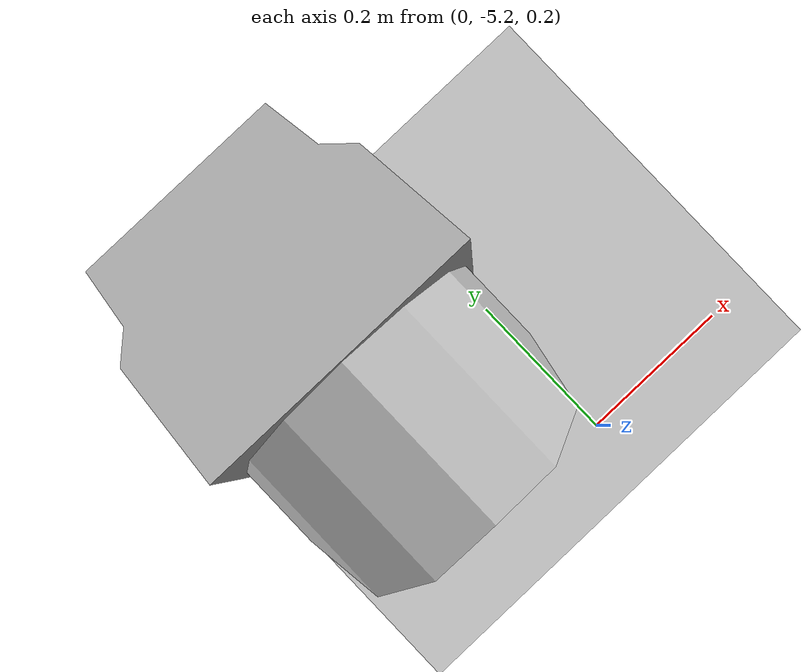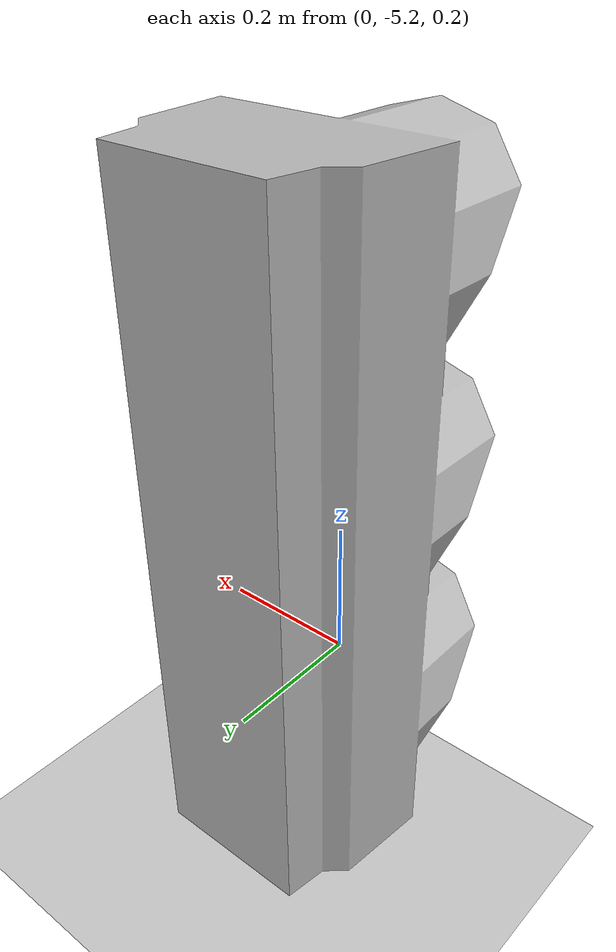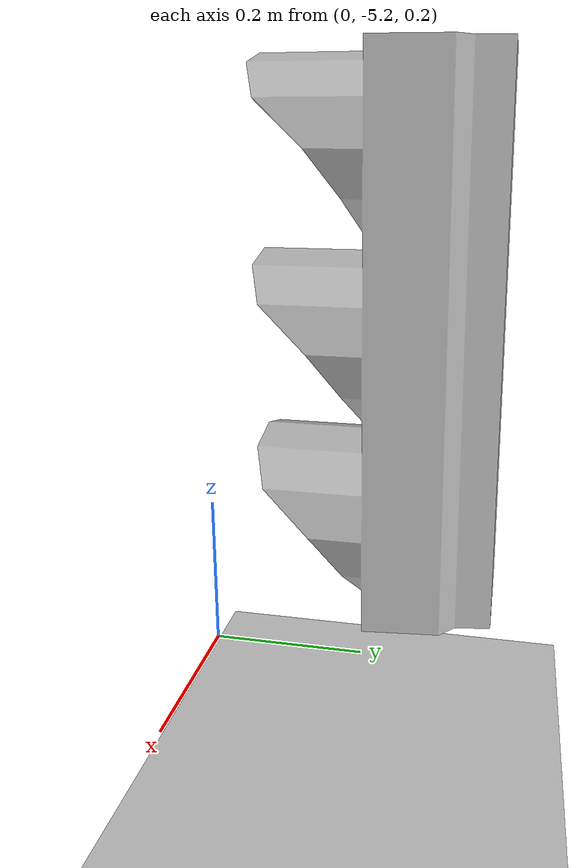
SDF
<sdf version="1.5">
 <world name="default">
  <include><uri>model://sun</uri></include>
  <include><uri>model://ground_plane</uri></include>
  <model name="stop_light">
   <static>1</static>
   <pose>-0.145031 -4.87535 1 0 -0 0</pose>
   <link name="light_traffic">
    <collision name="collision">
     <geometry>
      <mesh><uri>model://stop_light/meshes/stop_light.obj</uri><scale>0.01 0.01 0.01</scale></mesh>
     </geometry>
    </collision>
    <visual name="frame">
     <geometry>
      <mesh><uri>model://stop_light/meshes/stop_light.obj</uri><scale>0.01 0.01 0.01</scale></mesh>
     </geometry>
    </visual>
    <light name="red" type="spot">
     <pose>-0.001123 -0.082251 -0.147514 0 -0 0</pose>
     <attenuation><range>30</range><linear>0.05</linear></attenuation>
     <diffuse>0.5 1 1 1</diffuse>
     <specular>1 1 1 1</specular>
     <spot><inner_angle>0.3</inner_angle><outer_angle>0.35</outer_angle><falloff>1</falloff></spot>
     <direction>0 -1 0</direction>
    </light>
    <light name="green" type="spot">
     <pose>-0.001123 -0.082251 -0.655 0 -0 0</pose>
     <attenuation><range>30</range><linear>0.05</linear></attenuation>
     <diffuse>0.5 1 1 1</diffuse>
     <specular>1 1 1 1</specular>
     <spot><inner_angle>0.3</inner_angle><outer_angle>0.35</outer_angle><falloff>1</falloff></spot>
     <direction>0 -1 0</direction>
    </light>
    <light name="yellow" type="spot">
     <pose>-0.001123 -0.082251 -0.402 0 -0 0</pose>
     <attenuation><range>30</range><linear>0.05</linear></attenuation>
     <diffuse>0.5 1 1 1</diffuse>
     <specular>1 1 1 1</specular>
     <spot><inner_angle>0.3</inner_angle><outer_angle>0.35</outer_angle><falloff>1</falloff></spot>
     <direction>0 -1 0</direction>
    </light>
    <visual name="red">
     <pose>-0.001123 -0.082251 -0.147514 0 -0 0</pose>
     <geometry><sphere><radius>0.1012</radius></sphere></geometry>
     <material>
      <script>
       <uri>model://stop_light/materials/scripts/</uri>
       <uri>model://stop_light/materials/textures/</uri>
       <name>StopLight/Light</name>
      </script>
      <ambient>1 0 0 1</ambient>
      <specular>1 0 0 1</specular>
     </material>
    </visual>
    <visual name="yellow">
     <pose>-0.001123 -0.082251 -0.402 0 -0 0</pose>
     <geometry><sphere><radius>0.1012</radius></sphere></geometry>
     <material>
      <script>
       <uri>model://stop_light/materials/scripts/</uri>
       <uri>model://stop_light/materials/textures/</uri>
       <name>StopLight/Light</name>
      </script>
      <ambient>1 1 0 1</ambient>
      <specular>1 1 0 1</specular>
     </material>
    </visual>
    <visual name="green">
     <pose>-0.001123 -0.082251 -0.655 0 -0 0</pose>
     <geometry><sphere><radius>0.1012</radius></sphere></geometry>
     <material>
      <script>
       <uri>model://stop_light/materials/scripts/</uri>
       <uri>model://stop_light/materials/textures/</uri>
       <name>StopLight/Light</name>
      </script>
      <ambient>0 1 0 1</ambient>
      <specular>0 1 0 1</specular>
     </material>
    </visual>
   </link>
   <plugin name="light_control" filename="libLedPlugin.so">
    <enable>true</enable>
    <light>
     <id>light_traffic/green</id>
     <duration>0.1</duration>
     <interval>0.4</interval>
     <enable>true</enable>
     <color>0 1 0</color>
    </light>
    <light>
     <id>light_traffic/red</id>
     <duration>0.2</duration>
     <interval>0.4</interval>
     <enable>true</enable>
     <color>1 0 0</color>
    </light>
    <light>
     <id>light_traffic/yellow</id>
     <duration>0.3</duration>
     <interval>0.4</interval>
     <enable>true</enable>
     <color>1 1 0</color>
    </light>
   </plugin>
   <gravity>0 0 -9.8</gravity>
  </model>
 </world>
</sdf>
